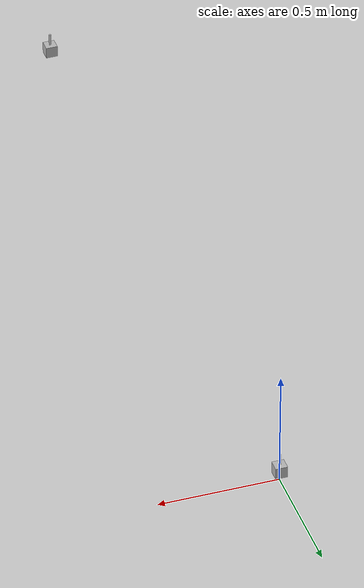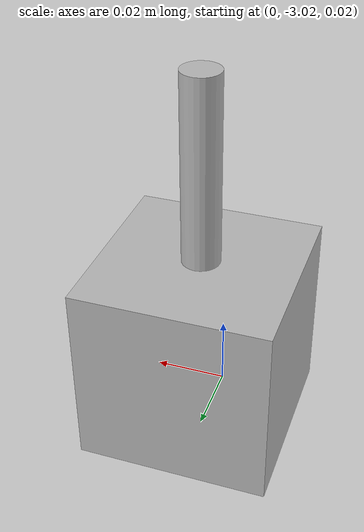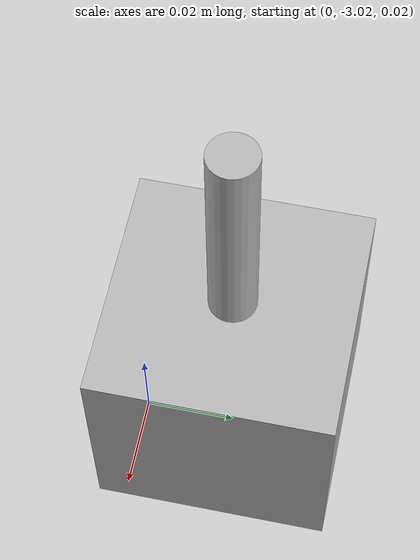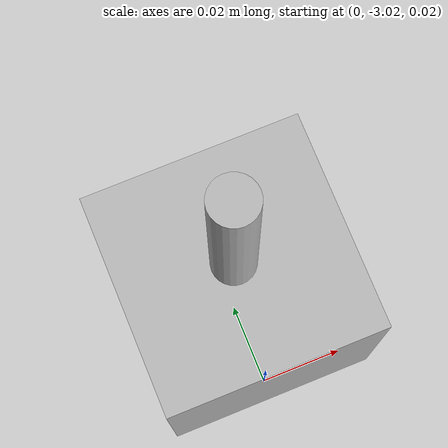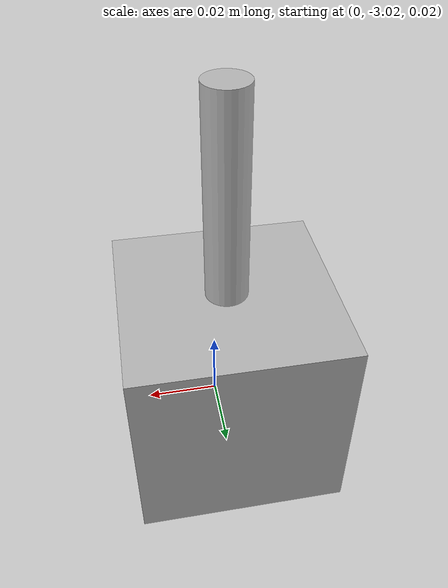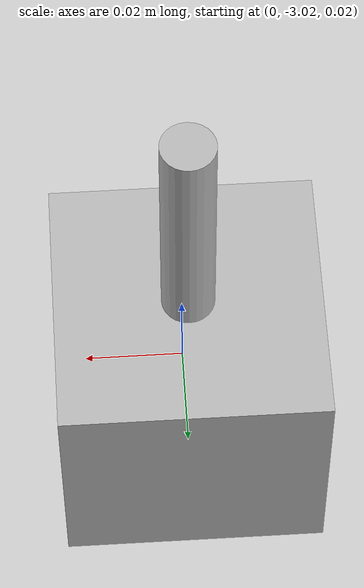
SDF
<?xml version="1.0" ?>
<sdf version="1.5">
  <world name="default">
    <!-- Ground -->
    <include>
      <uri>model://ground_plane</uri>
    </include>
    <!-- Wireless transmitter sensor model -->
    <model name="wirelessTransmitter">
      <static>true</static>
      <pose>0 0 0.05 0 0 0</pose>
      <link name="link">
        <inertial>
          <mass>0.1</mass>
        </inertial>
        <visual name="base">
          <geometry>
            <box>
              <size>.05 .05 .05</size>
            </box>
          </geometry>
        </visual>
        <visual name="antenna">
          <pose>0 0 .04 0 0 0</pose>
          <geometry>
            <cylinder>
              <radius>.005</radius>
              <length>.07</length>
            </cylinder>
          </geometry>
        </visual>
        <collision name="base1">
          <geometry>
            <box>
              <size>.05 .05 .05</size>
            </box>
          </geometry>
        </collision>
        <sensor name="wirelessTransmitter" type="wireless_transmitter">
        <pose>0 0 .04 0 0 0</pose>
          <always_on>1</always_on>
          <update_rate>1</update_rate>
          <visualize>true</visualize>
          <transceiver>
            <essid>helgen</essid>
            <frequency>2442.0</frequency>
            <power>14.5</power>
            <gain>2.6</gain>
          </transceiver>
        </sensor>
      </link>
    </model>
    <!-- Wireless receiver sensor model -->
    <model name="wirelessReceiver">
      <static>true</static>
      <pose>0 -3 0.05 0 0 0</pose>
      <link name="link">
        <inertial>
          <mass>0.1</mass>
        </inertial>
        <visual name="base">
          <geometry>
            <box>
              <size>.05 .05 .05</size>
            </box>
          </geometry>
        </visual>
        <visual name="antenna">
          <pose>0 0 .04 0 0 0</pose>
          <geometry>
            <cylinder>
              <radius>.005</radius>
              <length>.07</length>
            </cylinder>
          </geometry>
        </visual>
        <collision name="base1">
          <geometry>
            <box>
              <size>.05 .05 .05</size>
            </box>
          </geometry>
        </collision>
        <sensor name="wirelessReceiver" type="wireless_receiver">
          <plugin name="my_plugin" filename="libmy_receiver.so"/>
          <pose>0 0 .04 0 0 0</pose>
          <always_on>1</always_on>
          <update_rate>1</update_rate>
          <visualize>true</visualize>
          <transceiver>
            <min_frequency>2412.0</min_frequency>
            <max_frequency>2484.0</max_frequency>
            <power>14.5</power>
            <gain>2.6</gain>
            <sensitivity>-90.0</sensitivity>
          </transceiver>
        </sensor>
      </link>
    </model>
    <!-- A global light source -->
    <include>
      <uri>model://sun</uri>
    </include>
  </world>
</sdf>
